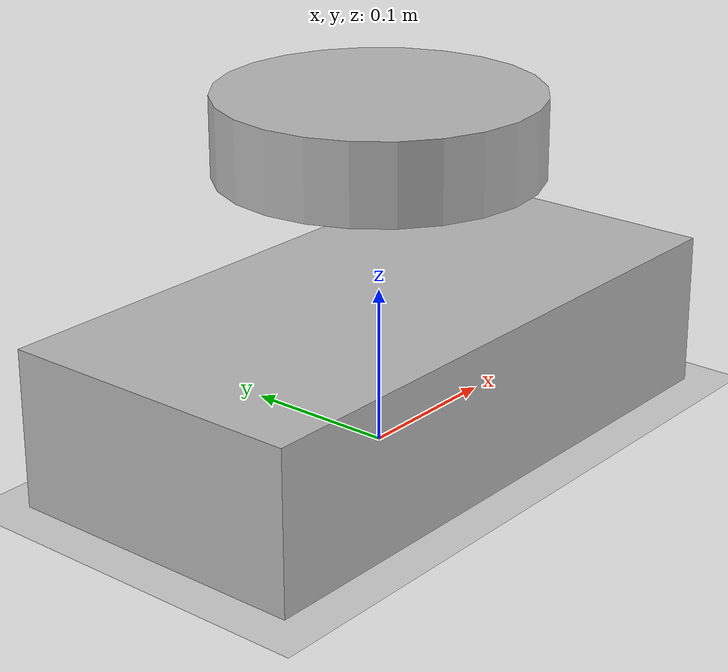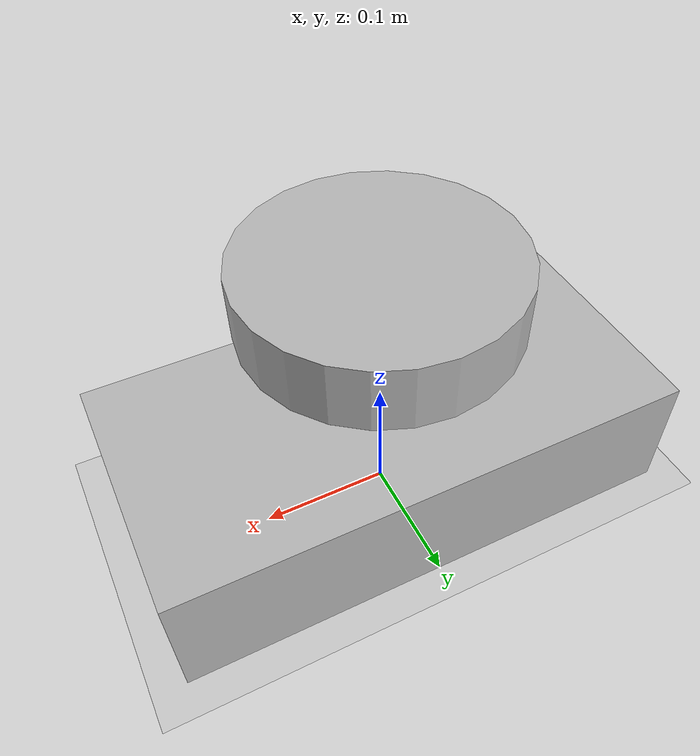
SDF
<?xml version ='1.0'?>
<sdf version ='1.4'>
  <world name='default'>
  	<include>
      <uri>model://ground_plane</uri>
    </include>

    <include>
      <uri>model://sun</uri>
    </include>

  	<include>
      <uri>model://Test4DynamicJoint1</uri>
    </include>

    <include>
      <uri>model://Test4DynamicJoint2</uri>
    </include>
  </world>
</sdf>

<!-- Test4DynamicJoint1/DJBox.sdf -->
<sdf version='1.4'>
  <model name='DJBox'>
	<static>false</static>
    <link name='box'>
      <pose>0 0 .05 0 0 0</pose>

      <collision name='box_collision'>
        <geometry>
          <box>
            <size>.4 .2 .1</size>
          </box>
        </geometry>
      </collision>

      <visual name='box_visual'>
        <geometry>
          <box>
            <size>.4 .2 .1</size>
          </box>
        </geometry>
      </visual>
    </link>
  </model>
</sdf>

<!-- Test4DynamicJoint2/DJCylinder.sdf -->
<sdf version='1.4'>
  <model name='DJCylinder'>
  <static>false</static>
    <link name='box'>
      <pose>0 0 .2 0 0 0</pose>

      <collision name='box_collision'>
        <geometry>
          <cylinder>
            <radius>.1</radius>
            <length>.05</length>
          </cylinder>
        </geometry>
      </collision>

      <visual name='box_visual'>
        <geometry>
          <cylinder>
            <radius>.1</radius>
            <length>.05</length>
          </cylinder>
        </geometry>
      </visual>
    </link>
  </model>
</sdf>
